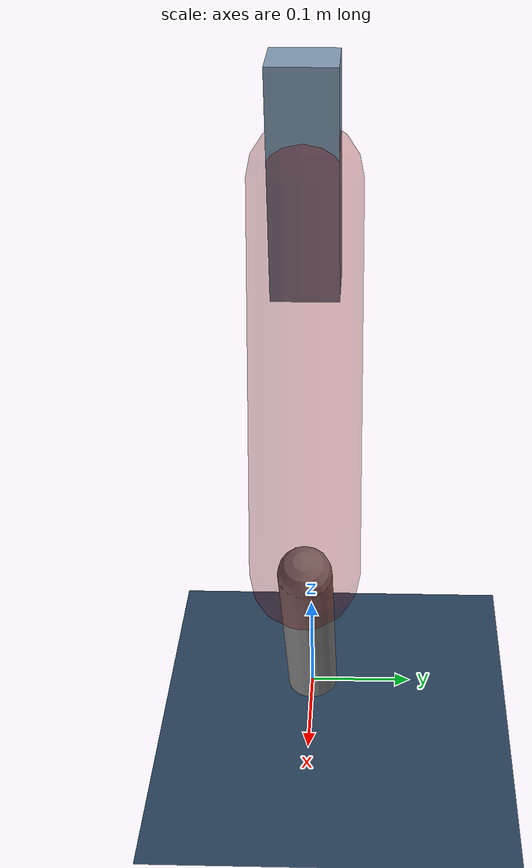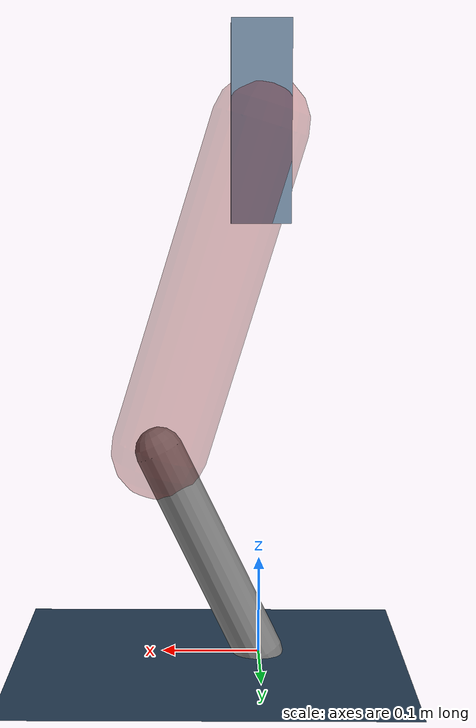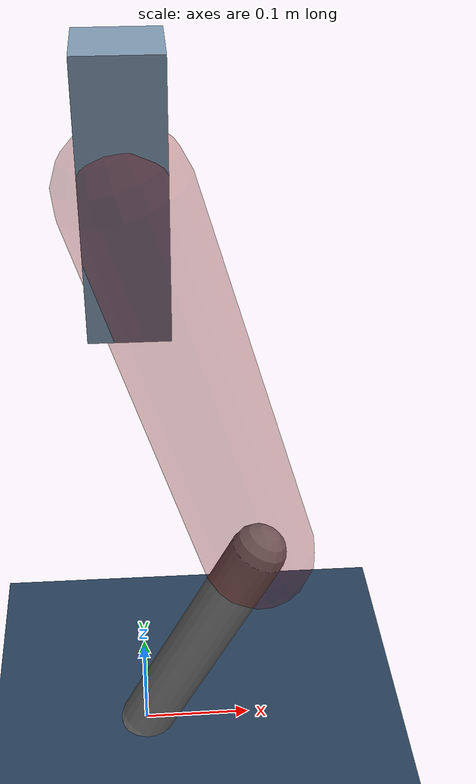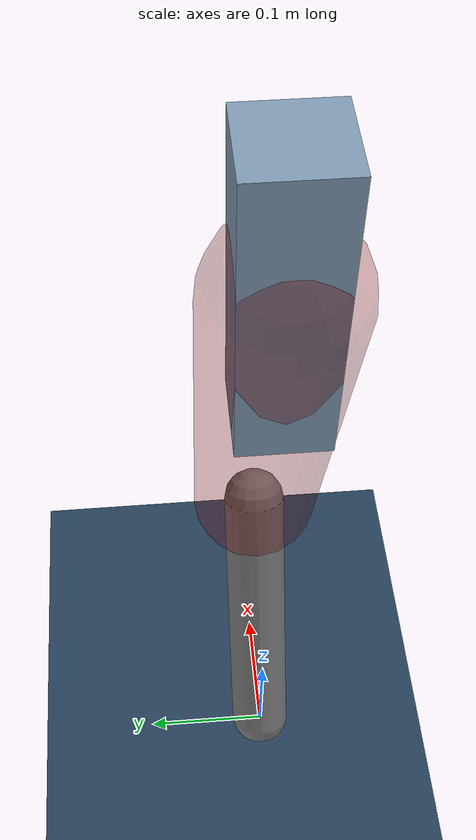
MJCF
<mujoco model="Hopper2D">
	<compiler inertiafromgeom="true" angle="radian" />
	<option timestep="0.001" integrator="implicit" cone="elliptic" solver="Newton" tolerance="1e-10" />

	<default>
		<geom contype="1" conaffinity="1" condim="3" friction="2 0.005 0.0001" solref="0.005 1" />
		<joint limited="true" damping="0.1" />
	</default>

	<asset>
		<texture name="skybox" type="skybox" builtin="gradient" rgb1=".4 .6 .8" rgb2="0 0 0" width="800" height="800" />
		<texture name="grid" type="2d" builtin="checker" rgb1=".1 .2 .3" rgb2=".2 .3 .4" width="300" height="300" mark="edge" markrgb=".2 .3 .4" />
		<material name="ground" texture="grid" texrepeat="1 1" texuniform="true" reflectance="0.1" />
		<material name="leg" rgba="0.5 0.6 0.7 1" />
	</asset>

	<worldbody>

		<geom name="floor" type="plane" size="5 5 0.25" material="ground" />

		<light directional="false" diffuse="0.8 0.8 0.8" specular="0.3 0.3 0.3" pos="0 0 2" dir="0 0 -1" />
		<light mode="targetbodycom" target="base" directional="false" diffuse="0.8 0.8 0.8" specular="0.3 0.3 0.3" pos="0 0 2" dir="0 0 -1" />

		<camera name="fixed" pos="0 -2 1" xyaxes="1 0 0 0 0 1" />
		<camera name="tracking" mode="trackcom" pos="0 -3 1" />

		<body name="root" pos="0 0 0.5463775006537128">
			<joint name="slide_x" type="slide" axis="1 0 0" range="-100 100" />
			<joint name="slide_z" type="slide" axis="0 0 1" range="0 10" />

			<body name="base" pos="0 0 0">
				<geom name="torso" type="box" size="0.03 0.03 0.1" mass="1.9729999999999999" material="leg" />

				<body name="link1" pos="0 0 0" euler="0 1.271680661180804 0">
					<joint type="hinge" axis="0 -1 0" pos="0 0 0" name="hinge1" limited="true" range="-3.14 3.14" stiffness="0" damping="0.1" />
					<geom name="thigh" type="capsule" fromto="0 0 0 0.3496535406816481 0 0" size="0.05" rgba="0.5 0 0 0.3" mass="1.1257299139086148" />

					<body name="link2" pos="0.3496535406816481 0 0" euler="0 0.7510470590572976 0">
						<joint type="hinge" axis="0 -1 0" pos="0 0 0" name="hinge2" limited="true" range="-3.14 3.14" stiffness="0" damping="0.1" />
						<geom name="shank" type="capsule" fromto="0 0 0 0.2359362037317682 0 0" size="0.025" mass="0.43094258335859137" />

					</body>
				</body>
			</body>
		</body>
	</worldbody>

	<actuator>
		<motor name="torque1" joint="hinge1" ctrlrange="-69.38848156703897 69.38848156703897" ctrllimited="true" gear="1" />
		<motor name="torque2" joint="hinge2" ctrlrange="-89.2318932087043 89.2318932087043" ctrllimited="true" gear="1" />
	</actuator>
</mujoco>
